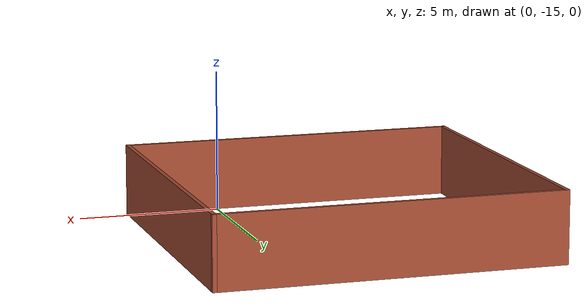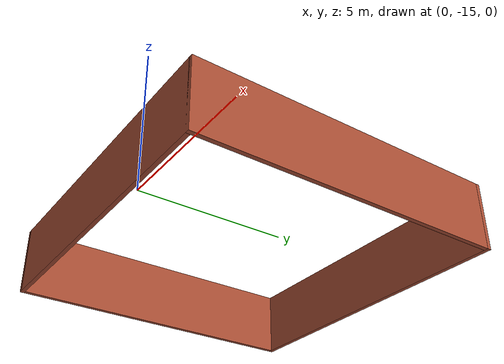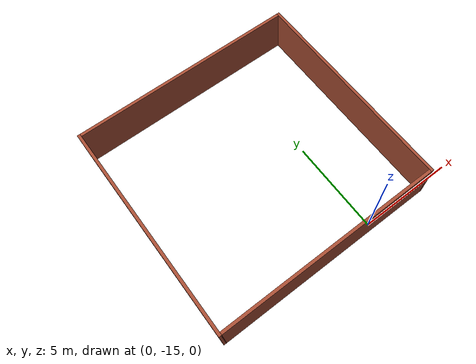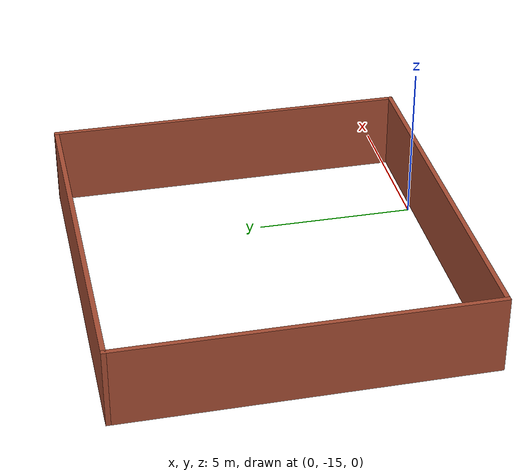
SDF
<?xml version='1.0'?>
<sdf version='1.7'>
  <model name='bricks_room'>
    <pose>-2.73505 -7.63531 0 0 -0 0</pose>
    <link name='Wall_39'>
      <collision name='Wall_39_Collision'>
        <geometry>
          <box>
            <size>12 0.15 2.5</size>
          </box>
        </geometry>
        <pose>0 0 1.25 0 -0 0</pose>
      </collision>
      <visual name='Wall_39_Visual'>
        <pose>0 0 1.25 0 -0 0</pose>
        <geometry>
          <box>
            <size>12 0.15 2.5</size>
          </box>
        </geometry>
        <material>
          <script>
            <uri>file://media/materials/scripts/gazebo.material</uri>
            <name>Gazebo/Bricks</name>
          </script>
          <ambient>1 1 1 1</ambient>
        </material>
        <meta>
          <layer>0</layer>
        </meta>
      </visual>
      <pose>0 -7.56031 0 0 -0 0</pose>
    </link>
    <link name='Wall_40'>
      <collision name='Wall_40_Collision'>
        <geometry>
          <box>
            <size>11.5 0.15 2.5</size>
          </box>
        </geometry>
        <pose>0 0 1.25 0 -0 0</pose>
      </collision>
      <visual name='Wall_40_Visual'>
        <pose>0 0 1.25 0 -0 0</pose>
        <geometry>
          <box>
            <size>11.5 0.15 2.5</size>
          </box>
        </geometry>
        <material>
          <script>
            <uri>file://media/materials/scripts/gazebo.material</uri>
            <name>Gazebo/Bricks</name>
          </script>
          <ambient>1 1 1 1</ambient>
        </material>
        <meta>
          <layer>0</layer>
        </meta>
      </visual>
      <pose>5.925 -1.88531 0 0 -0 1.5708</pose>
    </link>
    <link name='Wall_41'>
      <collision name='Wall_41_Collision'>
        <geometry>
          <box>
            <size>12 0.15 2.5</size>
          </box>
        </geometry>
        <pose>0 0 1.25 0 -0 0</pose>
      </collision>
      <visual name='Wall_41_Visual'>
        <pose>0 0 1.25 0 -0 0</pose>
        <geometry>
          <box>
            <size>12 0.15 2.5</size>
          </box>
        </geometry>
        <material>
          <script>
            <uri>file://media/materials/scripts/gazebo.material</uri>
            <name>Gazebo/Bricks</name>
          </script>
          <ambient>1 1 1 1</ambient>
        </material>
        <meta>
          <layer>0</layer>
        </meta>
      </visual>
      <pose>0 3.78969 0 0 -0 3.14159</pose>
    </link>
    <link name='Wall_42'>
      <collision name='Wall_42_Collision'>
        <geometry>
          <box>
            <size>11.5 0.15 2.5</size>
          </box>
        </geometry>
        <pose>0 0 1.25 0 -0 0</pose>
      </collision>
      <visual name='Wall_42_Visual'>
        <pose>0 0 1.25 0 -0 0</pose>
        <geometry>
          <box>
            <size>11.5 0.15 2.5</size>
          </box>
        </geometry>
        <material>
          <script>
            <uri>file://media/materials/scripts/gazebo.material</uri>
            <name>Gazebo/Bricks</name>
          </script>
          <ambient>1 1 1 1</ambient>
        </material>
        <meta>
          <layer>0</layer>
        </meta>
      </visual>
      <pose>-5.925 -1.88531 0 0 -0 -1.5708</pose>
    </link>
    <static>1</static>
  </model>
</sdf>
